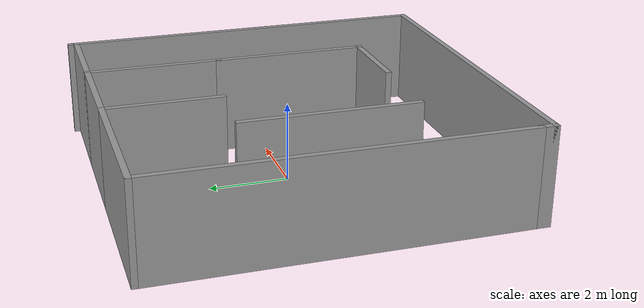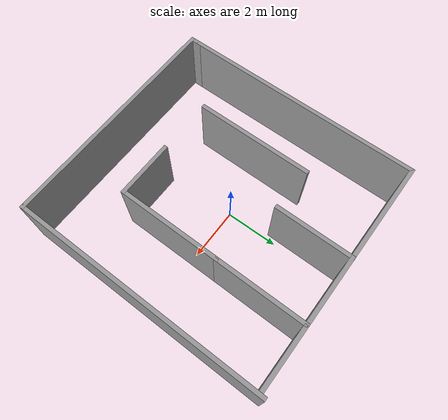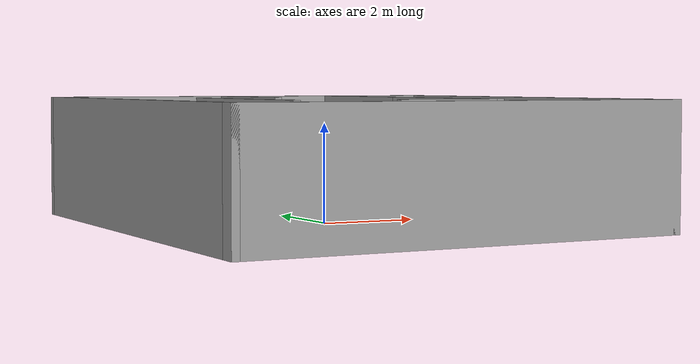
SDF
<?xml version='1.0'?>
<sdf version='1.6'>
  <model name='maze'>
    <pose frame=''>0.314489 -0.13223 0 0 -0 0</pose>
    <link name='Wall_10'>
      <collision name='Wall_10_Collision'>
        <geometry>
          <box>
            <size>2.25 0.15 2.5</size>
          </box>
        </geometry>
        <pose frame=''>0 0 1.25 0 -0 0</pose>
      </collision>
      <visual name='Wall_10_Visual'>
        <pose frame=''>0 0 1.25 0 -0 0</pose>
        <geometry>
          <box>
            <size>2.25 0.15 2.5</size>
          </box>
        </geometry>
        <material>
          <script>
            <uri>file://media/materials/scripts/gazebo.material</uri>
            <name>Gazebo/Grey</name>
          </script>
          <ambient>1 1 1 1</ambient>
        </material>
        <meta>
          <layer>0</layer>
        </meta>
      </visual>
      <pose frame=''>0.975 -2.55 0 0 -0 0</pose>
    </link>
    <link name='Wall_11'>
      <collision name='Wall_11_Collision'>
        <geometry>
          <box>
            <size>4 0.15 2.5</size>
          </box>
        </geometry>
        <pose frame=''>0 0 1.25 0 -0 0</pose>
      </collision>
      <visual name='Wall_11_Visual'>
        <pose frame=''>0 0 1.25 0 -0 0</pose>
        <geometry>
          <box>
            <size>4 0.15 2.5</size>
          </box>
        </geometry>
        <material>
          <script>
            <uri>file://media/materials/scripts/gazebo.material</uri>
            <name>Gazebo/Grey</name>
          </script>
          <ambient>1 1 1 1</ambient>
        </material>
        <meta>
          <layer>0</layer>
        </meta>
      </visual>
      <pose frame=''>2.025 -0.625 0 0 -0 1.5708</pose>
    </link>
    <link name='Wall_12'>
      <collision name='Wall_12_Collision'>
        <geometry>
          <box>
            <size>3.5 0.15 2.5</size>
          </box>
        </geometry>
        <pose frame=''>0 0 1.25 0 -0 0</pose>
      </collision>
      <visual name='Wall_12_Visual'>
        <pose frame=''>0 0 1.25 0 -0 0</pose>
        <geometry>
          <box>
            <size>3.5 0.15 2.5</size>
          </box>
        </geometry>
        <material>
          <script>
            <uri>file://media/materials/scripts/gazebo.material</uri>
            <name>Gazebo/Grey</name>
          </script>
          <ambient>1 1 1 1</ambient>
        </material>
        <meta>
          <layer>0</layer>
        </meta>
      </visual>
      <pose frame=''>2.025 2.975 0 0 -0 1.5708</pose>
    </link>
    <link name='Wall_13'>
      <collision name='Wall_13_Collision'>
        <geometry>
          <box>
            <size>2.75 0.15 2.5</size>
          </box>
        </geometry>
        <pose frame=''>0 0 1.25 0 -0 0</pose>
      </collision>
      <visual name='Wall_13_Visual'>
        <pose frame=''>0 0 1.25 0 -0 0</pose>
        <geometry>
          <box>
            <size>2.75 0.15 2.5</size>
          </box>
        </geometry>
        <material>
          <script>
            <uri>file://media/materials/scripts/gazebo.material</uri>
            <name>Gazebo/Grey</name>
          </script>
          <ambient>1 1 1 1</ambient>
        </material>
        <meta>
          <layer>0</layer>
        </meta>
      </visual>
      <pose frame=''>0.725 4.65 0 0 -0 3.14159</pose>
    </link>
    <link name='Wall_14'>
      <collision name='Wall_14_Collision'>
        <geometry>
          <box>
            <size>3 0.15 2.5</size>
          </box>
        </geometry>
        <pose frame=''>0 0 1.25 0 -0 0</pose>
      </collision>
      <visual name='Wall_14_Visual'>
        <pose frame=''>0 0 1.25 0 -0 0</pose>
        <geometry>
          <box>
            <size>3 0.15 2.5</size>
          </box>
        </geometry>
        <material>
          <script>
            <uri>file://media/materials/scripts/gazebo.material</uri>
            <name>Gazebo/Grey</name>
          </script>
          <ambient>1 1 1 1</ambient>
        </material>
        <meta>
          <layer>0</layer>
        </meta>
      </visual>
      <pose frame=''>-0.575 3.225 0 0 -0 -1.5708</pose>
    </link>
    <link name='Wall_17'>
      <collision name='Wall_17_Collision'>
        <geometry>
          <box>
            <size>4 0.15 2.5</size>
          </box>
        </geometry>
        <pose frame=''>0 0 1.25 0 -0 0</pose>
      </collision>
      <visual name='Wall_17_Visual'>
        <pose frame=''>0 0 1.25 0 -0 0</pose>
        <geometry>
          <box>
            <size>4 0.15 2.5</size>
          </box>
        </geometry>
        <material>
          <script>
            <uri>file://media/materials/scripts/gazebo.material</uri>
            <name>Gazebo/Grey</name>
          </script>
          <ambient>1 1 1 1</ambient>
        </material>
        <meta>
          <layer>0</layer>
        </meta>
      </visual>
      <pose frame=''>-2.5 4.65 0 0 -0 3.14159</pose>
    </link>
    <link name='Wall_18'>
      <collision name='Wall_18_Collision'>
        <geometry>
          <box>
            <size>9.25 0.15 2.5</size>
          </box>
        </geometry>
        <pose frame=''>0 0 1.25 0 -0 0</pose>
      </collision>
      <visual name='Wall_18_Visual'>
        <pose frame=''>0 0 1.25 0 -0 0</pose>
        <geometry>
          <box>
            <size>9.25 0.15 2.5</size>
          </box>
        </geometry>
        <material>
          <script>
            <uri>file://media/materials/scripts/gazebo.material</uri>
            <name>Gazebo/Grey</name>
          </script>
          <ambient>1 1 1 1</ambient>
        </material>
        <meta>
          <layer>0</layer>
        </meta>
      </visual>
      <pose frame=''>-4.425 0.1 0 0 -0 -1.5708</pose>
    </link>
    <link name='Wall_20'>
      <collision name='Wall_20_Collision'>
        <geometry>
          <box>
            <size>0.5 0.15 2.5</size>
          </box>
        </geometry>
        <pose frame=''>0 0 1.25 0 -0 0</pose>
      </collision>
      <visual name='Wall_20_Visual'>
        <pose frame=''>0 0 1.25 0 -0 0</pose>
        <geometry>
          <box>
            <size>0.5 0.15 2.5</size>
          </box>
        </geometry>
        <material>
          <script>
            <uri>file://media/materials/scripts/gazebo.material</uri>
            <name>Gazebo/Grey</name>
          </script>
          <ambient>1 1 1 1</ambient>
        </material>
        <meta>
          <layer>0</layer>
        </meta>
      </visual>
      <pose frame=''>-4.425 -4.625 0 0 -0 -1.5708</pose>
    </link>
    <link name='Wall_21'>
      <collision name='Wall_21_Collision'>
        <geometry>
          <box>
            <size>9 0.15 2.5</size>
          </box>
        </geometry>
        <pose frame=''>0 0 1.25 0 -0 0</pose>
      </collision>
      <visual name='Wall_21_Visual'>
        <pose frame=''>0 0 1.25 0 -0 0</pose>
        <geometry>
          <box>
            <size>9 0.15 2.5</size>
          </box>
        </geometry>
        <material>
          <script>
            <uri>file://media/materials/scripts/gazebo.material</uri>
            <name>Gazebo/Grey</name>
          </script>
          <ambient>1 1 1 1</ambient>
        </material>
        <meta>
          <layer>0</layer>
        </meta>
      </visual>
      <pose frame=''>0 -4.8 0 0 -0 0</pose>
    </link>
    <link name='Wall_22'>
      <collision name='Wall_22_Collision'>
        <geometry>
          <box>
            <size>9.75 0.15 2.5</size>
          </box>
        </geometry>
        <pose frame=''>0 0 1.25 0 -0 0</pose>
      </collision>
      <visual name='Wall_22_Visual'>
        <pose frame=''>0 0 1.25 0 -0 0</pose>
        <geometry>
          <box>
            <size>9.75 0.15 2.5</size>
          </box>
        </geometry>
        <material>
          <script>
            <uri>file://media/materials/scripts/gazebo.material</uri>
            <name>Gazebo/Grey</name>
          </script>
          <ambient>1 1 1 1</ambient>
        </material>
        <meta>
          <layer>0</layer>
        </meta>
      </visual>
      <pose frame=''>4.425 0 0 0 -0 1.5708</pose>
    </link>
    <link name='Wall_24'>
      <collision name='Wall_24_Collision'>
        <geometry>
          <box>
            <size>2.5 0.15 2.5</size>
          </box>
        </geometry>
        <pose frame=''>0 0 1.25 0 -0 0</pose>
      </collision>
      <visual name='Wall_24_Visual'>
        <pose frame=''>0 0 1.25 0 -0 0</pose>
        <geometry>
          <box>
            <size>2.5 0.15 2.5</size>
          </box>
        </geometry>
        <material>
          <script>
            <uri>file://media/materials/scripts/gazebo.material</uri>
            <name>Gazebo/Grey</name>
          </script>
          <ambient>1 1 1 1</ambient>
        </material>
        <meta>
          <layer>0</layer>
        </meta>
      </visual>
      <pose frame=''>3.2 4.65 0 0 -0 0</pose>
    </link>
    <link name='Wall_7'>
      <collision name='Wall_7_Collision'>
        <geometry>
          <box>
            <size>4.5 0.15 2.5</size>
          </box>
        </geometry>
        <pose frame=''>0 0 1.25 0 -0 0</pose>
      </collision>
      <visual name='Wall_7_Visual'>
        <pose frame=''>0 0 1.25 0 -0 0</pose>
        <geometry>
          <box>
            <size>4.5 0.15 2.5</size>
          </box>
        </geometry>
        <material>
          <script>
            <uri>file://media/materials/scripts/gazebo.material</uri>
            <name>Gazebo/Grey</name>
          </script>
          <ambient>1 1 1 1</ambient>
        </material>
        <meta>
          <layer>0</layer>
        </meta>
      </visual>
      <pose frame=''>-2.2439 -0.335325 0 0 -0 1.5708</pose>
    </link>
    <static>1</static>
  </model>
</sdf>
